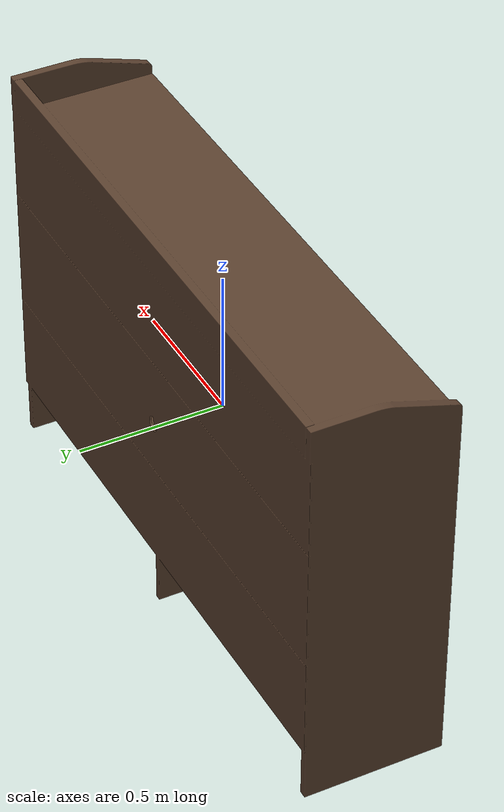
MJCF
<mujoco>
  <asset>
    <mesh file="19/ShoeCabinetMainBody.stl"   name="body"/>
    <mesh file="19/ShoeCabinetDoor.stl"       name="d0"/>
    <mesh file="19/ShoeCabinetDoor0001.stl"   name="d1"/>
    <mesh file="19/ShoeCabinetDoor0002.stl"   name="d2"/>
    <mesh file="19/ShoeCabinetDoor0003.stl"   name="d3"/>
    <mesh file="19/ShoeCabinetDrawer.stl"     name="draw0"/>
    <mesh file="19/ShoeCabinetDrawer0001.stl" name="draw1"/>
  </asset>

  <worldbody>
    <body>
      <!-- 主体&抽屉：深色木 -->
      <geom type="mesh" mesh="body"   rgba="0.35 0.25 0.18 1"/>
      <geom type="mesh" mesh="draw0"  rgba="0.35 0.25 0.18 1"/>
      <geom type="mesh" mesh="draw1"  rgba="0.35 0.25 0.18 1"/>
      <!-- 门扇：浅色木 -->
      <geom type="mesh" mesh="d0" rgba="0.70 0.55 0.40 1"/>
      <geom type="mesh" mesh="d1" rgba="0.70 0.55 0.40 1"/>
      <geom type="mesh" mesh="d2" rgba="0.70 0.55 0.40 1"/>
      <geom type="mesh" mesh="d3" rgba="0.70 0.55 0.40 1"/>
    </body>
  </worldbody>
</mujoco>
